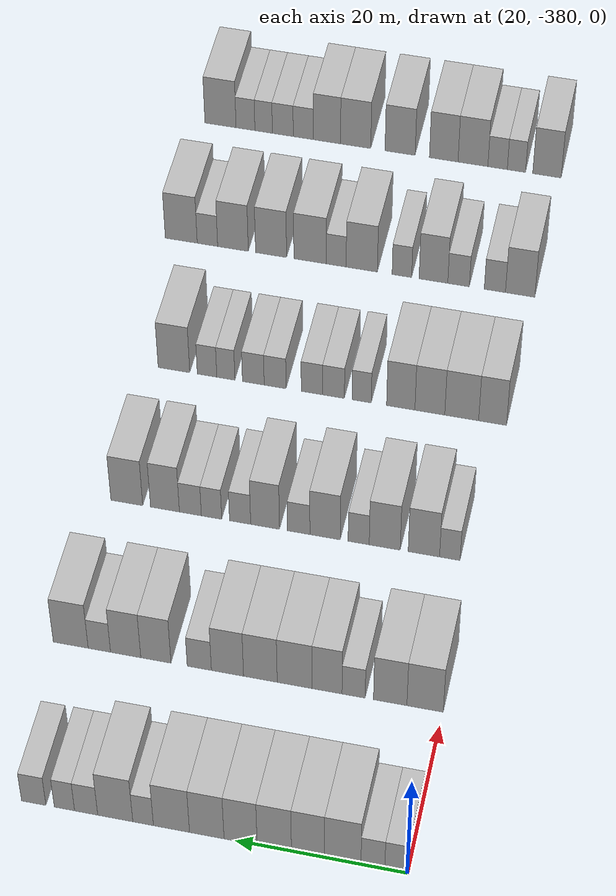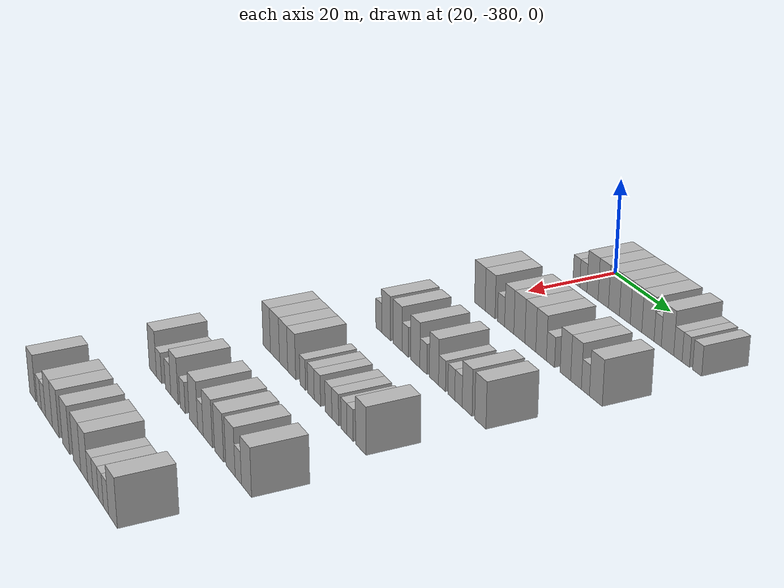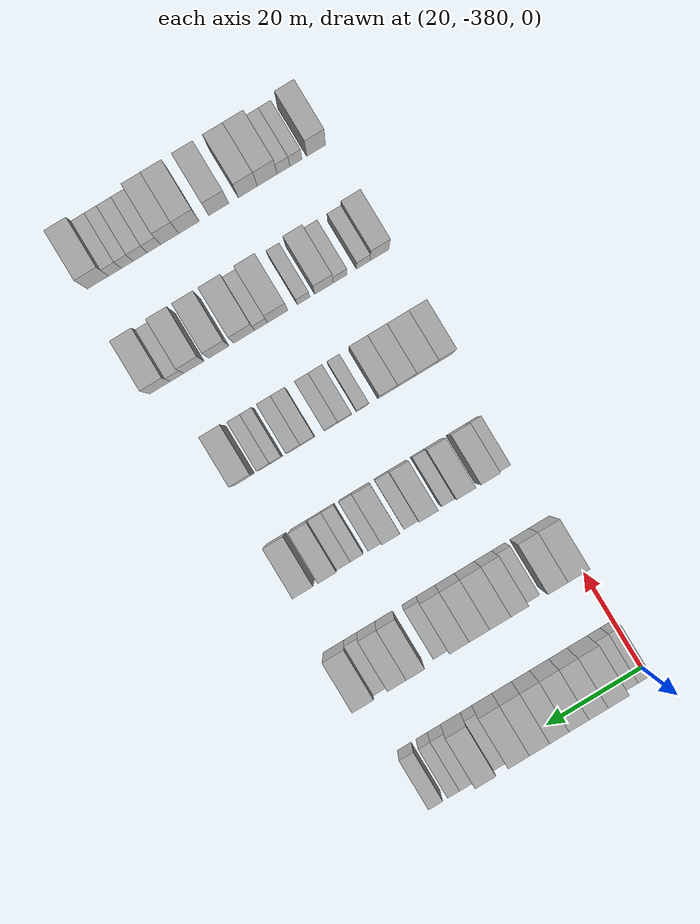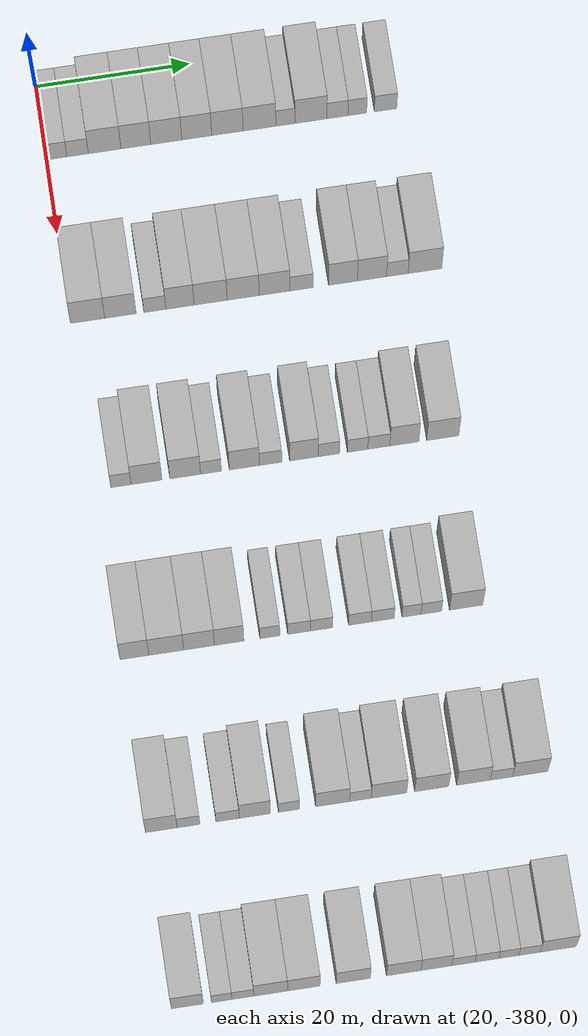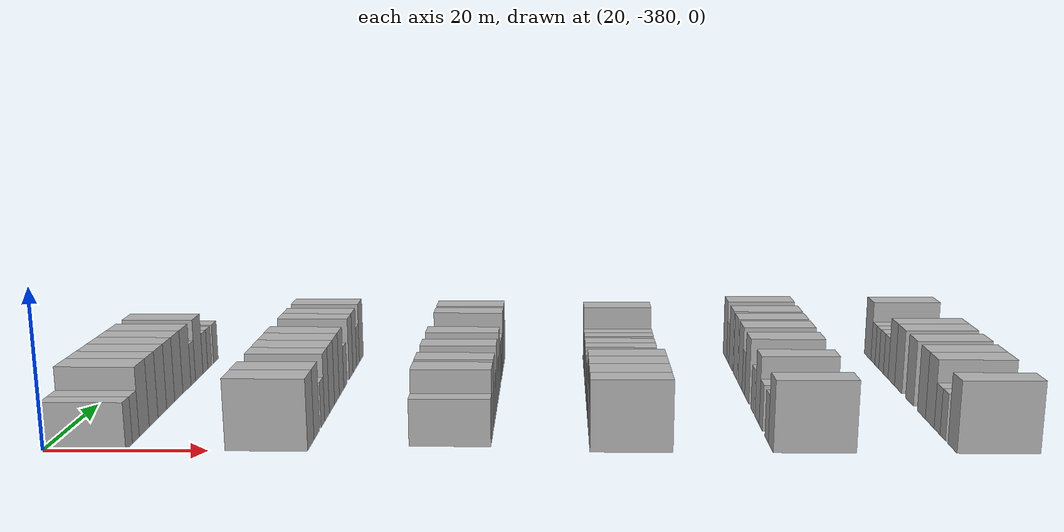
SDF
<sdf version="1.6">
 <world name="default">
  <model name="building_1">
   <static>1</static>
   <pose>25.0000 -378.6766 0 0.000000 0.000000 0.000000</pose>
   <link name="link">
    <pose>0 0 3.00 0 0 0</pose>
    <collision name="collision"><geometry><box><size>10.0000 2.6467 6.0000</size></box></geometry></collision>
    <visual name="visual">
     <cast_shadows>0</cast_shadows>
     <geometry><box><size>10.0000 2.6467 6.0000</size></box></geometry>
     <material>
      <script>
       <uri>model://HANNAS_wall/materials/scripts</uri>
       <uri>model://HANNAS_wall/materials/textures</uri>
       <name>vrc/HANNAS_wall</name>
      </script>
     </material>
    </visual>
   </link>
  </model>
  <model name="building_2">
   <static>1</static>
   <pose>25.0000 -375.9735 0 0.000000 0.000000 0.000000</pose>
   <link name="link">
    <pose>0 0 3.00 0 0 0</pose>
    <collision name="collision"><geometry><box><size>10.0000 2.7595 6.0000</size></box></geometry></collision>
    <visual name="visual">
     <cast_shadows>0</cast_shadows>
     <geometry><box><size>10.0000 2.7595 6.0000</size></box></geometry>
     <material>
      <script>
       <uri>model://HANNAS_wall/materials/scripts</uri>
       <uri>model://HANNAS_wall/materials/textures</uri>
       <name>vrc/HANNAS_wall</name>
      </script>
     </material>
    </visual>
   </link>
  </model>
  <model name="building_3">
   <static>1</static>
   <pose>25.0000 -372.4828 0 0.000000 0.000000 0.000000</pose>
   <link name="link">
    <pose>0 0 4.50 0 0 0</pose>
    <collision name="collision"><geometry><box><size>10.0000 4.2218 9.0000</size></box></geometry></collision>
    <visual name="visual">
     <cast_shadows>0</cast_shadows>
     <geometry><box><size>10.0000 4.2218 9.0000</size></box></geometry>
     <material>
      <script>
       <uri>model://HANNAS_wall/materials/scripts</uri>
       <uri>model://HANNAS_wall/materials/textures</uri>
       <name>vrc/HANNAS_wall</name>
      </script>
     </material>
    </visual>
   </link>
  </model>
  <model name="building_4">
   <static>1</static>
   <pose>25.0000 -368.4443 0 0.000000 0.000000 0.000000</pose>
   <link name="link">
    <pose>0 0 4.50 0 0 0</pose>
    <collision name="collision"><geometry><box><size>10.0000 3.8554 9.0000</size></box></geometry></collision>
    <visual name="visual">
     <cast_shadows>0</cast_shadows>
     <geometry><box><size>10.0000 3.8554 9.0000</size></box></geometry>
     <material>
      <script>
       <uri>model://HANNAS_wall/materials/scripts</uri>
       <uri>model://HANNAS_wall/materials/textures</uri>
       <name>vrc/HANNAS_wall</name>
      </script>
     </material>
    </visual>
   </link>
  </model>
  <model name="building_5">
   <static>1</static>
   <pose>25.0000 -364.5151 0 0.000000 0.000000 0.000000</pose>
   <link name="link">
    <pose>0 0 4.50 0 0 0</pose>
    <collision name="collision"><geometry><box><size>10.0000 4.0030 9.0000</size></box></geometry></collision>
    <visual name="visual">
     <cast_shadows>0</cast_shadows>
     <geometry><box><size>10.0000 4.0030 9.0000</size></box></geometry>
     <material>
      <script>
       <uri>model://HANNAS_wall/materials/scripts</uri>
       <uri>model://HANNAS_wall/materials/textures</uri>
       <name>vrc/HANNAS_wall</name>
      </script>
     </material>
    </visual>
   </link>
  </model>
  <model name="building_6">
   <static>1</static>
   <pose>25.0000 -360.5762 0 0.000000 0.000000 0.000000</pose>
   <link name="link">
    <pose>0 0 4.50 0 0 0</pose>
    <collision name="collision"><geometry><box><size>10.0000 3.8748 9.0000</size></box></geometry></collision>
    <visual name="visual">
     <cast_shadows>0</cast_shadows>
     <geometry><box><size>10.0000 3.8748 9.0000</size></box></geometry>
     <material>
      <script>
       <uri>model://HANNAS_wall/materials/scripts</uri>
       <uri>model://HANNAS_wall/materials/textures</uri>
       <name>vrc/HANNAS_wall</name>
      </script>
     </material>
    </visual>
   </link>
  </model>
  <model name="building_7">
   <static>1</static>
   <pose>25.0000 -356.6111 0 0.000000 0.000000 0.000000</pose>
   <link name="link">
    <pose>0 0 4.50 0 0 0</pose>
    <collision name="collision"><geometry><box><size>10.0000 4.0552 9.0000</size></box></geometry></collision>
    <visual name="visual">
     <cast_shadows>0</cast_shadows>
     <geometry><box><size>10.0000 4.0552 9.0000</size></box></geometry>
     <material>
      <script>
       <uri>model://HANNAS_wall/materials/scripts</uri>
       <uri>model://HANNAS_wall/materials/textures</uri>
       <name>vrc/HANNAS_wall</name>
      </script>
     </material>
    </visual>
   </link>
  </model>
  <model name="building_8">
   <static>1</static>
   <pose>25.0000 -352.4571 0 0.000000 0.000000 0.000000</pose>
   <link name="link">
    <pose>0 0 4.50 0 0 0</pose>
    <collision name="collision"><geometry><box><size>10.0000 4.2529 9.0000</size></box></geometry></collision>
    <visual name="visual">
     <cast_shadows>0</cast_shadows>
     <geometry><box><size>10.0000 4.2529 9.0000</size></box></geometry>
     <material>
      <script>
       <uri>model://HANNAS_wall/materials/scripts</uri>
       <uri>model://HANNAS_wall/materials/textures</uri>
       <name>vrc/HANNAS_wall</name>
      </script>
     </material>
    </visual>
   </link>
  </model>
  <model name="building_9">
   <static>1</static>
   <pose>25.0000 -349.1111 0 0.000000 0.000000 0.000000</pose>
   <link name="link">
    <pose>0 0 3.00 0 0 0</pose>
    <collision name="collision"><geometry><box><size>10.0000 2.4390 6.0000</size></box></geometry></collision>
    <visual name="visual">
     <cast_shadows>0</cast_shadows>
     <geometry><box><size>10.0000 2.4390 6.0000</size></box></geometry>
     <material>
      <script>
       <uri>model://HANNAS_wall/materials/scripts</uri>
       <uri>model://HANNAS_wall/materials/textures</uri>
       <name>vrc/HANNAS_wall</name>
      </script>
     </material>
    </visual>
   </link>
  </model>
  <model name="building_10">
   <static>1</static>
   <pose>25.0000 -345.8129 0 0.000000 0.000000 0.000000</pose>
   <link name="link">
    <pose>0 0 4.50 0 0 0</pose>
    <collision name="collision"><geometry><box><size>10.0000 4.1575 9.0000</size></box></geometry></collision>
    <visual name="visual">
     <cast_shadows>0</cast_shadows>
     <geometry><box><size>10.0000 4.1575 9.0000</size></box></geometry>
     <material>
      <script>
       <uri>model://HANNAS_wall/materials/scripts</uri>
       <uri>model://HANNAS_wall/materials/textures</uri>
       <name>vrc/HANNAS_wall</name>
      </script>
     </material>
    </visual>
   </link>
  </model>
  <model name="building_11">
   <static>1</static>
   <pose>25.0000 -342.3596 0 0.000000 0.000000 0.000000</pose>
   <link name="link">
    <pose>0 0 3.00 0 0 0</pose>
    <collision name="collision"><geometry><box><size>10.0000 2.7490 6.0000</size></box></geometry></collision>
    <visual name="visual">
     <cast_shadows>0</cast_shadows>
     <geometry><box><size>10.0000 2.7490 6.0000</size></box></geometry>
     <material>
      <script>
       <uri>model://HANNAS_wall/materials/scripts</uri>
       <uri>model://HANNAS_wall/materials/textures</uri>
       <name>vrc/HANNAS_wall</name>
      </script>
     </material>
    </visual>
   </link>
  </model>
  <model name="building_12">
   <static>1</static>
   <pose>25.0000 -339.7796 0 0.000000 0.000000 0.000000</pose>
   <link name="link">
    <pose>0 0 3.00 0 0 0</pose>
    <collision name="collision"><geometry><box><size>10.0000 2.4109 6.0000</size></box></geometry></collision>
    <visual name="visual">
     <cast_shadows>0</cast_shadows>
     <geometry><box><size>10.0000 2.4109 6.0000</size></box></geometry>
     <material>
      <script>
       <uri>model://HANNAS_wall/materials/scripts</uri>
       <uri>model://HANNAS_wall/materials/textures</uri>
       <name>vrc/HANNAS_wall</name>
      </script>
     </material>
    </visual>
   </link>
  </model>
  <model name="building_13">
   <static>1</static>
   <pose>25.0000 -336.1206 0 0.000000 0.000000 0.000000</pose>
   <link name="link">
    <pose>0 0 3.00 0 0 0</pose>
    <collision name="collision"><geometry><box><size>10.0000 2.9071 6.0000</size></box></geometry></collision>
    <visual name="visual">
     <cast_shadows>0</cast_shadows>
     <geometry><box><size>10.0000 2.9071 6.0000</size></box></geometry>
     <material>
      <script>
       <uri>model://HANNAS_wall/materials/scripts</uri>
       <uri>model://HANNAS_wall/materials/textures</uri>
       <name>vrc/HANNAS_wall</name>
      </script>
     </material>
    </visual>
   </link>
  </model>
  <model name="building_191">
   <static>1</static>
   <pose>47.0000 -377.8134 0 0.000000 0.000000 0.000000</pose>
   <link name="link">
    <pose>0 0 4.50 0 0 0</pose>
    <collision name="collision"><geometry><box><size>10.0000 4.3732 9.0000</size></box></geometry></collision>
    <visual name="visual">
     <cast_shadows>0</cast_shadows>
     <geometry><box><size>10.0000 4.3732 9.0000</size></box></geometry>
     <material>
      <script>
       <uri>model://HANNAS_wall/materials/scripts</uri>
       <uri>model://HANNAS_wall/materials/textures</uri>
       <name>vrc/HANNAS_wall</name>
      </script>
     </material>
    </visual>
   </link>
  </model>
  <model name="building_192">
   <static>1</static>
   <pose>47.0000 -373.6149 0 0.000000 0.000000 0.000000</pose>
   <link name="link">
    <pose>0 0 4.50 0 0 0</pose>
    <collision name="collision"><geometry><box><size>10.0000 4.0238 9.0000</size></box></geometry></collision>
    <visual name="visual">
     <cast_shadows>0</cast_shadows>
     <geometry><box><size>10.0000 4.0238 9.0000</size></box></geometry>
     <material>
      <script>
       <uri>model://HANNAS_wall/materials/scripts</uri>
       <uri>model://HANNAS_wall/materials/textures</uri>
       <name>vrc/HANNAS_wall</name>
      </script>
     </material>
    </visual>
   </link>
  </model>
  <model name="building_193">
   <static>1</static>
   <pose>47.0000 -369.2017 0 0.000000 0.000000 0.000000</pose>
   <link name="link">
    <pose>0 0 3.00 0 0 0</pose>
    <collision name="collision"><geometry><box><size>10.0000 2.8026 6.0000</size></box></geometry></collision>
    <visual name="visual">
     <cast_shadows>0</cast_shadows>
     <geometry><box><size>10.0000 2.8026 6.0000</size></box></geometry>
     <material>
      <script>
       <uri>model://HANNAS_wall/materials/scripts</uri>
       <uri>model://HANNAS_wall/materials/textures</uri>
       <name>vrc/HANNAS_wall</name>
      </script>
     </material>
    </visual>
   </link>
  </model>
  <model name="building_194">
   <static>1</static>
   <pose>47.0000 -365.9935 0 0.000000 0.000000 0.000000</pose>
   <link name="link">
    <pose>0 0 4.50 0 0 0</pose>
    <collision name="collision"><geometry><box><size>10.0000 3.6138 9.0000</size></box></geometry></collision>
    <visual name="visual">
     <cast_shadows>0</cast_shadows>
     <geometry><box><size>10.0000 3.6138 9.0000</size></box></geometry>
     <material>
      <script>
       <uri>model://HANNAS_wall/materials/scripts</uri>
       <uri>model://HANNAS_wall/materials/textures</uri>
       <name>vrc/HANNAS_wall</name>
      </script>
     </material>
    </visual>
   </link>
  </model>
  <model name="building_195">
   <static>1</static>
   <pose>47.0000 -362.0600 0 0.000000 0.000000 0.000000</pose>
   <link name="link">
    <pose>0 0 4.50 0 0 0</pose>
    <collision name="collision"><geometry><box><size>10.0000 4.2532 9.0000</size></box></geometry></collision>
    <visual name="visual">
     <cast_shadows>0</cast_shadows>
     <geometry><box><size>10.0000 4.2532 9.0000</size></box></geometry>
     <material>
      <script>
       <uri>model://HANNAS_wall/materials/scripts</uri>
       <uri>model://HANNAS_wall/materials/textures</uri>
       <name>vrc/HANNAS_wall</name>
      </script>
     </material>
    </visual>
   </link>
  </model>
  <model name="building_196">
   <static>1</static>
   <pose>47.0000 -357.8823 0 0.000000 0.000000 0.000000</pose>
   <link name="link">
    <pose>0 0 4.50 0 0 0</pose>
    <collision name="collision"><geometry><box><size>10.0000 4.1022 9.0000</size></box></geometry></collision>
    <visual name="visual">
     <cast_shadows>0</cast_shadows>
     <geometry><box><size>10.0000 4.1022 9.0000</size></box></geometry>
     <material>
      <script>
       <uri>model://HANNAS_wall/materials/scripts</uri>
       <uri>model://HANNAS_wall/materials/textures</uri>
       <name>vrc/HANNAS_wall</name>
      </script>
     </material>
    </visual>
   </link>
  </model>
  <model name="building_197">
   <static>1</static>
   <pose>47.0000 -353.8651 0 0.000000 0.000000 0.000000</pose>
   <link name="link">
    <pose>0 0 4.50 0 0 0</pose>
    <collision name="collision"><geometry><box><size>10.0000 3.9322 9.0000</size></box></geometry></collision>
    <visual name="visual">
     <cast_shadows>0</cast_shadows>
     <geometry><box><size>10.0000 3.9322 9.0000</size></box></geometry>
     <material>
      <script>
       <uri>model://HANNAS_wall/materials/scripts</uri>
       <uri>model://HANNAS_wall/materials/textures</uri>
       <name>vrc/HANNAS_wall</name>
      </script>
     </material>
    </visual>
   </link>
  </model>
  <model name="building_198">
   <static>1</static>
   <pose>47.0000 -350.4172 0 0.000000 0.000000 0.000000</pose>
   <link name="link">
    <pose>0 0 3.00 0 0 0</pose>
    <collision name="collision"><geometry><box><size>10.0000 2.9635 6.0000</size></box></geometry></collision>
    <visual name="visual">
     <cast_shadows>0</cast_shadows>
     <geometry><box><size>10.0000 2.9635 6.0000</size></box></geometry>
     <material>
      <script>
       <uri>model://HANNAS_wall/materials/scripts</uri>
       <uri>model://HANNAS_wall/materials/textures</uri>
       <name>vrc/HANNAS_wall</name>
      </script>
     </material>
    </visual>
   </link>
  </model>
  <model name="building_199">
   <static>1</static>
   <pose>47.0000 -345.0776 0 0.000000 0.000000 0.000000</pose>
   <link name="link">
    <pose>0 0 4.50 0 0 0</pose>
    <collision name="collision"><geometry><box><size>10.0000 3.7157 9.0000</size></box></geometry></collision>
    <visual name="visual">
     <cast_shadows>0</cast_shadows>
     <geometry><box><size>10.0000 3.7157 9.0000</size></box></geometry>
     <material>
      <script>
       <uri>model://HANNAS_wall/materials/scripts</uri>
       <uri>model://HANNAS_wall/materials/textures</uri>
       <name>vrc/HANNAS_wall</name>
      </script>
     </material>
    </visual>
   </link>
  </model>
  <model name="building_200">
   <static>1</static>
   <pose>47.0000 -341.3517 0 0.000000 0.000000 0.000000</pose>
   <link name="link">
    <pose>0 0 4.50 0 0 0</pose>
    <collision name="collision"><geometry><box><size>10.0000 3.7361 9.0000</size></box></geometry></collision>
    <visual name="visual">
     <cast_shadows>0</cast_shadows>
     <geometry><box><size>10.0000 3.7361 9.0000</size></box></geometry>
     <material>
      <script>
       <uri>model://HANNAS_wall/materials/scripts</uri>
       <uri>model://HANNAS_wall/materials/textures</uri>
       <name>vrc/HANNAS_wall</name>
      </script>
     </material>
    </visual>
   </link>
  </model>
  <model name="building_201">
   <static>1</static>
   <pose>47.0000 -338.0992 0 0.000000 0.000000 0.000000</pose>
   <link name="link">
    <pose>0 0 3.00 0 0 0</pose>
    <collision name="collision"><geometry><box><size>10.0000 2.7690 6.0000</size></box></geometry></collision>
    <visual name="visual">
     <cast_shadows>0</cast_shadows>
     <geometry><box><size>10.0000 2.7690 6.0000</size></box></geometry>
     <material>
      <script>
       <uri>model://HANNAS_wall/materials/scripts</uri>
       <uri>model://HANNAS_wall/materials/textures</uri>
       <name>vrc/HANNAS_wall</name>
      </script>
     </material>
    </visual>
   </link>
  </model>
  <model name="building_202">
   <static>1</static>
   <pose>47.0000 -334.5515 0 0.000000 0.000000 0.000000</pose>
   <link name="link">
    <pose>0 0 4.50 0 0 0</pose>
    <collision name="collision"><geometry><box><size>10.0000 4.3264 9.0000</size></box></geometry></collision>
    <visual name="visual">
     <cast_shadows>0</cast_shadows>
     <geometry><box><size>10.0000 4.3264 9.0000</size></box></geometry>
     <material>
      <script>
       <uri>model://HANNAS_wall/materials/scripts</uri>
       <uri>model://HANNAS_wall/materials/textures</uri>
       <name>vrc/HANNAS_wall</name>
      </script>
     </material>
    </visual>
   </link>
  </model>
  <model name="building_383">
   <static>1</static>
   <pose>69.0000 -376.7182 0 0.000000 0.000000 0.000000</pose>
   <link name="link">
    <pose>0 0 3.00 0 0 0</pose>
    <collision name="collision"><geometry><box><size>10.0000 2.5636 6.0000</size></box></geometry></collision>
    <visual name="visual">
     <cast_shadows>0</cast_shadows>
     <geometry><box><size>10.0000 2.5636 6.0000</size></box></geometry>
     <material>
      <script>
       <uri>model://HANNAS_wall/materials/scripts</uri>
       <uri>model://HANNAS_wall/materials/textures</uri>
       <name>vrc/HANNAS_wall</name>
      </script>
     </material>
    </visual>
   </link>
  </model>
  <model name="building_384">
   <static>1</static>
   <pose>69.0000 -373.4763 0 0.000000 0.000000 0.000000</pose>
   <link name="link">
    <pose>0 0 4.50 0 0 0</pose>
    <collision name="collision"><geometry><box><size>10.0000 3.9203 9.0000</size></box></geometry></collision>
    <visual name="visual">
     <cast_shadows>0</cast_shadows>
     <geometry><box><size>10.0000 3.9203 9.0000</size></box></geometry>
     <material>
      <script>
       <uri>model://HANNAS_wall/materials/scripts</uri>
       <uri>model://HANNAS_wall/materials/textures</uri>
       <name>vrc/HANNAS_wall</name>
      </script>
     </material>
    </visual>
   </link>
  </model>
  <model name="building_385">
   <static>1</static>
   <pose>69.0000 -368.5686 0 0.000000 0.000000 0.000000</pose>
   <link name="link">
    <pose>0 0 4.50 0 0 0</pose>
    <collision name="collision"><geometry><box><size>10.0000 3.8950 9.0000</size></box></geometry></collision>
    <visual name="visual">
     <cast_shadows>0</cast_shadows>
     <geometry><box><size>10.0000 3.8950 9.0000</size></box></geometry>
     <material>
      <script>
       <uri>model://HANNAS_wall/materials/scripts</uri>
       <uri>model://HANNAS_wall/materials/textures</uri>
       <name>vrc/HANNAS_wall</name>
      </script>
     </material>
    </visual>
   </link>
  </model>
  <model name="building_386">
   <static>1</static>
   <pose>69.0000 -365.2976 0 0.000000 0.000000 0.000000</pose>
   <link name="link">
    <pose>0 0 3.00 0 0 0</pose>
    <collision name="collision"><geometry><box><size>10.0000 2.6471 6.0000</size></box></geometry></collision>
    <visual name="visual">
     <cast_shadows>0</cast_shadows>
     <geometry><box><size>10.0000 2.6471 6.0000</size></box></geometry>
     <material>
      <script>
       <uri>model://HANNAS_wall/materials/scripts</uri>
       <uri>model://HANNAS_wall/materials/textures</uri>
       <name>vrc/HANNAS_wall</name>
      </script>
     </material>
    </visual>
   </link>
  </model>
  <model name="building_387">
   <static>1</static>
   <pose>69.0000 -361.0617 0 0.000000 0.000000 0.000000</pose>
   <link name="link">
    <pose>0 0 4.50 0 0 0</pose>
    <collision name="collision"><geometry><box><size>10.0000 3.8247 9.0000</size></box></geometry></collision>
    <visual name="visual">
     <cast_shadows>0</cast_shadows>
     <geometry><box><size>10.0000 3.8247 9.0000</size></box></geometry>
     <material>
      <script>
       <uri>model://HANNAS_wall/materials/scripts</uri>
       <uri>model://HANNAS_wall/materials/textures</uri>
       <name>vrc/HANNAS_wall</name>
      </script>
     </material>
    </visual>
   </link>
  </model>
  <model name="building_388">
   <static>1</static>
   <pose>69.0000 -357.7267 0 0.000000 0.000000 0.000000</pose>
   <link name="link">
    <pose>0 0 3.00 0 0 0</pose>
    <collision name="collision"><geometry><box><size>10.0000 2.8453 6.0000</size></box></geometry></collision>
    <visual name="visual">
     <cast_shadows>0</cast_shadows>
     <geometry><box><size>10.0000 2.8453 6.0000</size></box></geometry>
     <material>
      <script>
       <uri>model://HANNAS_wall/materials/scripts</uri>
       <uri>model://HANNAS_wall/materials/textures</uri>
       <name>vrc/HANNAS_wall</name>
      </script>
     </material>
    </visual>
   </link>
  </model>
  <model name="building_389">
   <static>1</static>
   <pose>69.0000 -353.4746 0 0.000000 0.000000 0.000000</pose>
   <link name="link">
    <pose>0 0 4.50 0 0 0</pose>
    <collision name="collision"><geometry><box><size>10.0000 3.6590 9.0000</size></box></geometry></collision>
    <visual name="visual">
     <cast_shadows>0</cast_shadows>
     <geometry><box><size>10.0000 3.6590 9.0000</size></box></geometry>
     <material>
      <script>
       <uri>model://HANNAS_wall/materials/scripts</uri>
       <uri>model://HANNAS_wall/materials/textures</uri>
       <name>vrc/HANNAS_wall</name>
      </script>
     </material>
    </visual>
   </link>
  </model>
  <model name="building_390">
   <static>1</static>
   <pose>69.0000 -350.3002 0 0.000000 0.000000 0.000000</pose>
   <link name="link">
    <pose>0 0 3.00 0 0 0</pose>
    <collision name="collision"><geometry><box><size>10.0000 2.6898 6.0000</size></box></geometry></collision>
    <visual name="visual">
     <cast_shadows>0</cast_shadows>
     <geometry><box><size>10.0000 2.6898 6.0000</size></box></geometry>
     <material>
      <script>
       <uri>model://HANNAS_wall/materials/scripts</uri>
       <uri>model://HANNAS_wall/materials/textures</uri>
       <name>vrc/HANNAS_wall</name>
      </script>
     </material>
    </visual>
   </link>
  </model>
  <model name="building_391">
   <static>1</static>
   <pose>69.0000 -346.6586 0 0.000000 0.000000 0.000000</pose>
   <link name="link">
    <pose>0 0 3.00 0 0 0</pose>
    <collision name="collision"><geometry><box><size>10.0000 2.5935 6.0000</size></box></geometry></collision>
    <visual name="visual">
     <cast_shadows>0</cast_shadows>
     <geometry><box><size>10.0000 2.5935 6.0000</size></box></geometry>
     <material>
      <script>
       <uri>model://HANNAS_wall/materials/scripts</uri>
       <uri>model://HANNAS_wall/materials/textures</uri>
       <name>vrc/HANNAS_wall</name>
      </script>
     </material>
    </visual>
   </link>
  </model>
  <model name="building_392">
   <static>1</static>
   <pose>69.0000 -343.9580 0 0.000000 0.000000 0.000000</pose>
   <link name="link">
    <pose>0 0 3.00 0 0 0</pose>
    <collision name="collision"><geometry><box><size>10.0000 2.8078 6.0000</size></box></geometry></collision>
    <visual name="visual">
     <cast_shadows>0</cast_shadows>
     <geometry><box><size>10.0000 2.8078 6.0000</size></box></geometry>
     <material>
      <script>
       <uri>model://HANNAS_wall/materials/scripts</uri>
       <uri>model://HANNAS_wall/materials/textures</uri>
       <name>vrc/HANNAS_wall</name>
      </script>
     </material>
    </visual>
   </link>
  </model>
  <model name="building_393">
   <static>1</static>
   <pose>69.0000 -340.7050 0 0.000000 0.000000 0.000000</pose>
   <link name="link">
    <pose>0 0 4.50 0 0 0</pose>
    <collision name="collision"><geometry><box><size>10.0000 3.6982 9.0000</size></box></geometry></collision>
    <visual name="visual">
     <cast_shadows>0</cast_shadows>
     <geometry><box><size>10.0000 3.6982 9.0000</size></box></geometry>
     <material>
      <script>
       <uri>model://HANNAS_wall/materials/scripts</uri>
       <uri>model://HANNAS_wall/materials/textures</uri>
       <name>vrc/HANNAS_wall</name>
      </script>
     </material>
    </visual>
   </link>
  </model>
  <model name="building_394">
   <static>1</static>
   <pose>69.0000 -335.8134 0 0.000000 0.000000 0.000000</pose>
   <link name="link">
    <pose>0 0 4.50 0 0 0</pose>
    <collision name="collision"><geometry><box><size>10.0000 4.0850 9.0000</size></box></geometry></collision>
    <visual name="visual">
     <cast_shadows>0</cast_shadows>
     <geometry><box><size>10.0000 4.0850 9.0000</size></box></geometry>
     <material>
      <script>
       <uri>model://HANNAS_wall/materials/scripts</uri>
       <uri>model://HANNAS_wall/materials/textures</uri>
       <name>vrc/HANNAS_wall</name>
      </script>
     </material>
    </visual>
   </link>
  </model>
  <model name="building_564">
   <static>1</static>
   <pose>91.0000 -378.1955 0 0.000000 0.000000 0.000000</pose>
   <link name="link">
    <pose>0 0 4.50 0 0 0</pose>
    <collision name="collision"><geometry><box><size>10.0000 3.6091 9.0000</size></box></geometry></collision>
    <visual name="visual">
     <cast_shadows>0</cast_shadows>
     <geometry><box><size>10.0000 3.6091 9.0000</size></box></geometry>
     <material>
      <script>
       <uri>model://HANNAS_wall/materials/scripts</uri>
       <uri>model://HANNAS_wall/materials/textures</uri>
       <name>vrc/HANNAS_wall</name>
      </script>
     </material>
    </visual>
   </link>
  </model>
  <model name="building_565">
   <static>1</static>
   <pose>91.0000 -374.1950 0 0.000000 0.000000 0.000000</pose>
   <link name="link">
    <pose>0 0 4.50 0 0 0</pose>
    <collision name="collision"><geometry><box><size>10.0000 4.3919 9.0000</size></box></geometry></collision>
    <visual name="visual">
     <cast_shadows>0</cast_shadows>
     <geometry><box><size>10.0000 4.3919 9.0000</size></box></geometry>
     <material>
      <script>
       <uri>model://HANNAS_wall/materials/scripts</uri>
       <uri>model://HANNAS_wall/materials/textures</uri>
       <name>vrc/HANNAS_wall</name>
      </script>
     </material>
    </visual>
   </link>
  </model>
  <model name="building_566">
   <static>1</static>
   <pose>91.0000 -370.0602 0 0.000000 0.000000 0.000000</pose>
   <link name="link">
    <pose>0 0 4.50 0 0 0</pose>
    <collision name="collision"><geometry><box><size>10.0000 3.8777 9.0000</size></box></geometry></collision>
    <visual name="visual">
     <cast_shadows>0</cast_shadows>
     <geometry><box><size>10.0000 3.8777 9.0000</size></box></geometry>
     <material>
      <script>
       <uri>model://HANNAS_wall/materials/scripts</uri>
       <uri>model://HANNAS_wall/materials/textures</uri>
       <name>vrc/HANNAS_wall</name>
      </script>
     </material>
    </visual>
   </link>
  </model>
  <model name="building_567">
   <static>1</static>
   <pose>91.0000 -366.2762 0 0.000000 0.000000 0.000000</pose>
   <link name="link">
    <pose>0 0 4.50 0 0 0</pose>
    <collision name="collision"><geometry><box><size>10.0000 3.6901 9.0000</size></box></geometry></collision>
    <visual name="visual">
     <cast_shadows>0</cast_shadows>
     <geometry><box><size>10.0000 3.6901 9.0000</size></box></geometry>
     <material>
      <script>
       <uri>model://HANNAS_wall/materials/scripts</uri>
       <uri>model://HANNAS_wall/materials/textures</uri>
       <name>vrc/HANNAS_wall</name>
      </script>
     </material>
    </visual>
   </link>
  </model>
  <model name="building_568">
   <static>1</static>
   <pose>91.0000 -361.1736 0 0.000000 0.000000 0.000000</pose>
   <link name="link">
    <pose>0 0 3.00 0 0 0</pose>
    <collision name="collision"><geometry><box><size>10.0000 2.5152 6.0000</size></box></geometry></collision>
    <visual name="visual">
     <cast_shadows>0</cast_shadows>
     <geometry><box><size>10.0000 2.5152 6.0000</size></box></geometry>
     <material>
      <script>
       <uri>model://HANNAS_wall/materials/scripts</uri>
       <uri>model://HANNAS_wall/materials/textures</uri>
       <name>vrc/HANNAS_wall</name>
      </script>
     </material>
    </visual>
   </link>
  </model>
  <model name="building_569">
   <static>1</static>
   <pose>91.0000 -357.4845 0 0.000000 0.000000 0.000000</pose>
   <link name="link">
    <pose>0 0 3.00 0 0 0</pose>
    <collision name="collision"><geometry><box><size>10.0000 2.8630 6.0000</size></box></geometry></collision>
    <visual name="visual">
     <cast_shadows>0</cast_shadows>
     <geometry><box><size>10.0000 2.8630 6.0000</size></box></geometry>
     <material>
      <script>
       <uri>model://HANNAS_wall/materials/scripts</uri>
       <uri>model://HANNAS_wall/materials/textures</uri>
       <name>vrc/HANNAS_wall</name>
      </script>
     </material>
    </visual>
   </link>
  </model>
  <model name="building_570">
   <static>1</static>
   <pose>91.0000 -354.6542 0 0.000000 0.000000 0.000000</pose>
   <link name="link">
    <pose>0 0 3.00 0 0 0</pose>
    <collision name="collision"><geometry><box><size>10.0000 2.7976 6.0000</size></box></geometry></collision>
    <visual name="visual">
     <cast_shadows>0</cast_shadows>
     <geometry><box><size>10.0000 2.7976 6.0000</size></box></geometry>
     <material>
      <script>
       <uri>model://HANNAS_wall/materials/scripts</uri>
       <uri>model://HANNAS_wall/materials/textures</uri>
       <name>vrc/HANNAS_wall</name>
      </script>
     </material>
    </visual>
   </link>
  </model>
  <model name="building_571">
   <static>1</static>
   <pose>91.0000 -349.8128 0 0.000000 0.000000 0.000000</pose>
   <link name="link">
    <pose>0 0 3.00 0 0 0</pose>
    <collision name="collision"><geometry><box><size>10.0000 2.8852 6.0000</size></box></geometry></collision>
    <visual name="visual">
     <cast_shadows>0</cast_shadows>
     <geometry><box><size>10.0000 2.8852 6.0000</size></box></geometry>
     <material>
      <script>
       <uri>model://HANNAS_wall/materials/scripts</uri>
       <uri>model://HANNAS_wall/materials/textures</uri>
       <name>vrc/HANNAS_wall</name>
      </script>
     </material>
    </visual>
   </link>
  </model>
  <model name="building_572">
   <static>1</static>
   <pose>91.0000 -346.9358 0 0.000000 0.000000 0.000000</pose>
   <link name="link">
    <pose>0 0 3.00 0 0 0</pose>
    <collision name="collision"><geometry><box><size>10.0000 2.8688 6.0000</size></box></geometry></collision>
    <visual name="visual">
     <cast_shadows>0</cast_shadows>
     <geometry><box><size>10.0000 2.8688 6.0000</size></box></geometry>
     <material>
      <script>
       <uri>model://HANNAS_wall/materials/scripts</uri>
       <uri>model://HANNAS_wall/materials/textures</uri>
       <name>vrc/HANNAS_wall</name>
      </script>
     </material>
    </visual>
   </link>
  </model>
  <model name="building_573">
   <static>1</static>
   <pose>91.0000 -343.3011 0 0.000000 0.000000 0.000000</pose>
   <link name="link">
    <pose>0 0 3.00 0 0 0</pose>
    <collision name="collision"><geometry><box><size>10.0000 2.4007 6.0000</size></box></geometry></collision>
    <visual name="visual">
     <cast_shadows>0</cast_shadows>
     <geometry><box><size>10.0000 2.4007 6.0000</size></box></geometry>
     <material>
      <script>
       <uri>model://HANNAS_wall/materials/scripts</uri>
       <uri>model://HANNAS_wall/materials/textures</uri>
       <name>vrc/HANNAS_wall</name>
      </script>
     </material>
    </visual>
   </link>
  </model>
  <model name="building_574">
   <static>1</static>
   <pose>91.0000 -340.8085 0 0.000000 0.000000 0.000000</pose>
   <link name="link">
    <pose>0 0 3.00 0 0 0</pose>
    <collision name="collision"><geometry><box><size>10.0000 2.5844 6.0000</size></box></geometry></collision>
    <visual name="visual">
     <cast_shadows>0</cast_shadows>
     <geometry><box><size>10.0000 2.5844 6.0000</size></box></geometry>
     <material>
      <script>
       <uri>model://HANNAS_wall/materials/scripts</uri>
       <uri>model://HANNAS_wall/materials/textures</uri>
       <name>vrc/HANNAS_wall</name>
      </script>
     </material>
    </visual>
   </link>
  </model>
  <model name="building_575">
   <static>1</static>
   <pose>91.0000 -336.4158 0 0.000000 0.000000 0.000000</pose>
   <link name="link">
    <pose>0 0 4.50 0 0 0</pose>
    <collision name="collision"><geometry><box><size>10.0000 4.2011 9.0000</size></box></geometry></collision>
    <visual name="visual">
     <cast_shadows>0</cast_shadows>
     <geometry><box><size>10.0000 4.2011 9.0000</size></box></geometry>
     <material>
      <script>
       <uri>model://HANNAS_wall/materials/scripts</uri>
       <uri>model://HANNAS_wall/materials/textures</uri>
       <name>vrc/HANNAS_wall</name>
      </script>
     </material>
    </visual>
   </link>
  </model>
  <model name="building_756">
   <static>1</static>
   <pose>113.0000 -378.0325 0 0.000000 0.000000 0.000000</pose>
   <link name="link">
    <pose>0 0 4.50 0 0 0</pose>
    <collision name="collision"><geometry><box><size>10.0000 3.9350 9.0000</size></box></geometry></collision>
    <visual name="visual">
     <cast_shadows>0</cast_shadows>
     <geometry><box><size>10.0000 3.9350 9.0000</size></box></geometry>
     <material>
      <script>
       <uri>model://HANNAS_wall/materials/scripts</uri>
       <uri>model://HANNAS_wall/materials/textures</uri>
       <name>vrc/HANNAS_wall</name>
      </script>
     </material>
    </visual>
   </link>
  </model>
  <model name="building_757">
   <static>1</static>
   <pose>113.0000 -374.6476 0 0.000000 0.000000 0.000000</pose>
   <link name="link">
    <pose>0 0 3.00 0 0 0</pose>
    <collision name="collision"><geometry><box><size>10.0000 2.8347 6.0000</size></box></geometry></collision>
    <visual name="visual">
     <cast_shadows>0</cast_shadows>
     <geometry><box><size>10.0000 2.8347 6.0000</size></box></geometry>
     <material>
      <script>
       <uri>model://HANNAS_wall/materials/scripts</uri>
       <uri>model://HANNAS_wall/materials/textures</uri>
       <name>vrc/HANNAS_wall</name>
      </script>
     </material>
    </visual>
   </link>
  </model>
  <model name="building_758">
   <static>1</static>
   <pose>113.0000 -369.7759 0 0.000000 0.000000 0.000000</pose>
   <link name="link">
    <pose>0 0 3.00 0 0 0</pose>
    <collision name="collision"><geometry><box><size>10.0000 2.9087 6.0000</size></box></geometry></collision>
    <visual name="visual">
     <cast_shadows>0</cast_shadows>
     <geometry><box><size>10.0000 2.9087 6.0000</size></box></geometry>
     <material>
      <script>
       <uri>model://HANNAS_wall/materials/scripts</uri>
       <uri>model://HANNAS_wall/materials/textures</uri>
       <name>vrc/HANNAS_wall</name>
      </script>
     </material>
    </visual>
   </link>
  </model>
  <model name="building_759">
   <static>1</static>
   <pose>113.0000 -366.3853 0 0.000000 0.000000 0.000000</pose>
   <link name="link">
    <pose>0 0 4.50 0 0 0</pose>
    <collision name="collision"><geometry><box><size>10.0000 3.8724 9.0000</size></box></geometry></collision>
    <visual name="visual">
     <cast_shadows>0</cast_shadows>
     <geometry><box><size>10.0000 3.8724 9.0000</size></box></geometry>
     <material>
      <script>
       <uri>model://HANNAS_wall/materials/scripts</uri>
       <uri>model://HANNAS_wall/materials/textures</uri>
       <name>vrc/HANNAS_wall</name>
      </script>
     </material>
    </visual>
   </link>
  </model>
  <model name="building_760">
   <static>1</static>
   <pose>113.0000 -362.1274 0 0.000000 0.000000 0.000000</pose>
   <link name="link">
    <pose>0 0 3.00 0 0 0</pose>
    <collision name="collision"><geometry><box><size>10.0000 2.6433 6.0000</size></box></geometry></collision>
    <visual name="visual">
     <cast_shadows>0</cast_shadows>
     <geometry><box><size>10.0000 2.6433 6.0000</size></box></geometry>
     <material>
      <script>
       <uri>model://HANNAS_wall/materials/scripts</uri>
       <uri>model://HANNAS_wall/materials/textures</uri>
       <name>vrc/HANNAS_wall</name>
      </script>
     </material>
    </visual>
   </link>
  </model>
  <model name="building_761">
   <static>1</static>
   <pose>113.0000 -356.6867 0 0.000000 0.000000 0.000000</pose>
   <link name="link">
    <pose>0 0 4.50 0 0 0</pose>
    <collision name="collision"><geometry><box><size>10.0000 4.2382 9.0000</size></box></geometry></collision>
    <visual name="visual">
     <cast_shadows>0</cast_shadows>
     <geometry><box><size>10.0000 4.2382 9.0000</size></box></geometry>
     <material>
      <script>
       <uri>model://HANNAS_wall/materials/scripts</uri>
       <uri>model://HANNAS_wall/materials/textures</uri>
       <name>vrc/HANNAS_wall</name>
      </script>
     </material>
    </visual>
   </link>
  </model>
  <model name="building_762">
   <static>1</static>
   <pose>113.0000 -353.2263 0 0.000000 0.000000 0.000000</pose>
   <link name="link">
    <pose>0 0 3.00 0 0 0</pose>
    <collision name="collision"><geometry><box><size>10.0000 2.6825 6.0000</size></box></geometry></collision>
    <visual name="visual">
     <cast_shadows>0</cast_shadows>
     <geometry><box><size>10.0000 2.6825 6.0000</size></box></geometry>
     <material>
      <script>
       <uri>model://HANNAS_wall/materials/scripts</uri>
       <uri>model://HANNAS_wall/materials/textures</uri>
       <name>vrc/HANNAS_wall</name>
      </script>
     </material>
    </visual>
   </link>
  </model>
  <model name="building_763">
   <static>1</static>
   <pose>113.0000 -349.6649 0 0.000000 0.000000 0.000000</pose>
   <link name="link">
    <pose>0 0 4.50 0 0 0</pose>
    <collision name="collision"><geometry><box><size>10.0000 4.4402 9.0000</size></box></geometry></collision>
    <visual name="visual">
     <cast_shadows>0</cast_shadows>
     <geometry><box><size>10.0000 4.4402 9.0000</size></box></geometry>
     <material>
      <script>
       <uri>model://HANNAS_wall/materials/scripts</uri>
       <uri>model://HANNAS_wall/materials/textures</uri>
       <name>vrc/HANNAS_wall</name>
      </script>
     </material>
    </visual>
   </link>
  </model>
  <model name="building_764">
   <static>1</static>
   <pose>113.0000 -344.3226 0 0.000000 0.000000 0.000000</pose>
   <link name="link">
    <pose>0 0 4.50 0 0 0</pose>
    <collision name="collision"><geometry><box><size>10.0000 4.2444 9.0000</size></box></geometry></collision>
    <visual name="visual">
     <cast_shadows>0</cast_shadows>
     <geometry><box><size>10.0000 4.2444 9.0000</size></box></geometry>
     <material>
      <script>
       <uri>model://HANNAS_wall/materials/scripts</uri>
       <uri>model://HANNAS_wall/materials/textures</uri>
       <name>vrc/HANNAS_wall</name>
      </script>
     </material>
    </visual>
   </link>
  </model>
  <model name="building_765">
   <static>1</static>
   <pose>113.0000 -339.0950 0 0.000000 0.000000 0.000000</pose>
   <link name="link">
    <pose>0 0 4.50 0 0 0</pose>
    <collision name="collision"><geometry><box><size>10.0000 4.2107 9.0000</size></box></geometry></collision>
    <visual name="visual">
     <cast_shadows>0</cast_shadows>
     <geometry><box><size>10.0000 4.2107 9.0000</size></box></geometry>
     <material>
      <script>
       <uri>model://HANNAS_wall/materials/scripts</uri>
       <uri>model://HANNAS_wall/materials/textures</uri>
       <name>vrc/HANNAS_wall</name>
      </script>
     </material>
    </visual>
   </link>
  </model>
  <model name="building_766">
   <static>1</static>
   <pose>113.0000 -335.5823 0 0.000000 0.000000 0.000000</pose>
   <link name="link">
    <pose>0 0 3.00 0 0 0</pose>
    <collision name="collision"><geometry><box><size>10.0000 2.8148 6.0000</size></box></geometry></collision>
    <visual name="visual">
     <cast_shadows>0</cast_shadows>
     <geometry><box><size>10.0000 2.8148 6.0000</size></box></geometry>
     <material>
      <script>
       <uri>model://HANNAS_wall/materials/scripts</uri>
       <uri>model://HANNAS_wall/materials/textures</uri>
       <name>vrc/HANNAS_wall</name>
      </script>
     </material>
    </visual>
   </link>
  </model>
  <model name="building_767">
   <static>1</static>
   <pose>113.0000 -331.9756 0 0.000000 0.000000 0.000000</pose>
   <link name="link">
    <pose>0 0 4.50 0 0 0</pose>
    <collision name="collision"><geometry><box><size>10.0000 4.3985 9.0000</size></box></geometry></collision>
    <visual name="visual">
     <cast_shadows>0</cast_shadows>
     <geometry><box><size>10.0000 4.3985 9.0000</size></box></geometry>
     <material>
      <script>
       <uri>model://HANNAS_wall/materials/scripts</uri>
       <uri>model://HANNAS_wall/materials/textures</uri>
       <name>vrc/HANNAS_wall</name>
      </script>
     </material>
    </visual>
   </link>
  </model>
  <model name="building_939">
   <static>1</static>
   <pose>135.0000 -378.0331 0 0.000000 0.000000 0.000000</pose>
   <link name="link">
    <pose>0 0 4.50 0 0 0</pose>
    <collision name="collision"><geometry><box><size>10.0000 3.9338 9.0000</size></box></geometry></collision>
    <visual name="visual">
     <cast_shadows>0</cast_shadows>
     <geometry><box><size>10.0000 3.9338 9.0000</size></box></geometry>
     <material>
      <script>
       <uri>model://HANNAS_wall/materials/scripts</uri>
       <uri>model://HANNAS_wall/materials/textures</uri>
       <name>vrc/HANNAS_wall</name>
      </script>
     </material>
    </visual>
   </link>
  </model>
  <model name="building_940">
   <static>1</static>
   <pose>135.0000 -373.8032 0 0.000000 0.000000 0.000000</pose>
   <link name="link">
    <pose>0 0 3.00 0 0 0</pose>
    <collision name="collision"><geometry><box><size>10.0000 2.5260 6.0000</size></box></geometry></collision>
    <visual name="visual">
     <cast_shadows>0</cast_shadows>
     <geometry><box><size>10.0000 2.5260 6.0000</size></box></geometry>
     <material>
      <script>
       <uri>model://HANNAS_wall/materials/scripts</uri>
       <uri>model://HANNAS_wall/materials/textures</uri>
       <name>vrc/HANNAS_wall</name>
      </script>
     </material>
    </visual>
   </link>
  </model>
  <model name="building_941">
   <static>1</static>
   <pose>135.0000 -371.1887 0 0.000000 0.000000 0.000000</pose>
   <link name="link">
    <pose>0 0 3.00 0 0 0</pose>
    <collision name="collision"><geometry><box><size>10.0000 2.7028 6.0000</size></box></geometry></collision>
    <visual name="visual">
     <cast_shadows>0</cast_shadows>
     <geometry><box><size>10.0000 2.7028 6.0000</size></box></geometry>
     <material>
      <script>
       <uri>model://HANNAS_wall/materials/scripts</uri>
       <uri>model://HANNAS_wall/materials/textures</uri>
       <name>vrc/HANNAS_wall</name>
      </script>
     </material>
    </visual>
   </link>
  </model>
  <model name="building_942">
   <static>1</static>
   <pose>135.0000 -367.7576 0 0.000000 0.000000 0.000000</pose>
   <link name="link">
    <pose>0 0 4.50 0 0 0</pose>
    <collision name="collision"><geometry><box><size>10.0000 4.1595 9.0000</size></box></geometry></collision>
    <visual name="visual">
     <cast_shadows>0</cast_shadows>
     <geometry><box><size>10.0000 4.1595 9.0000</size></box></geometry>
     <material>
      <script>
       <uri>model://HANNAS_wall/materials/scripts</uri>
       <uri>model://HANNAS_wall/materials/textures</uri>
       <name>vrc/HANNAS_wall</name>
      </script>
     </material>
    </visual>
   </link>
  </model>
  <model name="building_943">
   <static>1</static>
   <pose>135.0000 -363.6799 0 0.000000 0.000000 0.000000</pose>
   <link name="link">
    <pose>0 0 4.50 0 0 0</pose>
    <collision name="collision"><geometry><box><size>10.0000 3.9960 9.0000</size></box></geometry></collision>
    <visual name="visual">
     <cast_shadows>0</cast_shadows>
     <geometry><box><size>10.0000 3.9960 9.0000</size></box></geometry>
     <material>
      <script>
       <uri>model://HANNAS_wall/materials/scripts</uri>
       <uri>model://HANNAS_wall/materials/textures</uri>
       <name>vrc/HANNAS_wall</name>
      </script>
     </material>
    </visual>
   </link>
  </model>
  <model name="building_944">
   <static>1</static>
   <pose>135.0000 -357.5720 0 0.000000 0.000000 0.000000</pose>
   <link name="link">
    <pose>0 0 4.50 0 0 0</pose>
    <collision name="collision"><geometry><box><size>10.0000 4.2198 9.0000</size></box></geometry></collision>
    <visual name="visual">
     <cast_shadows>0</cast_shadows>
     <geometry><box><size>10.0000 4.2198 9.0000</size></box></geometry>
     <material>
      <script>
       <uri>model://HANNAS_wall/materials/scripts</uri>
       <uri>model://HANNAS_wall/materials/textures</uri>
       <name>vrc/HANNAS_wall</name>
      </script>
     </material>
    </visual>
   </link>
  </model>
  <model name="building_945">
   <static>1</static>
   <pose>135.0000 -351.3326 0 0.000000 0.000000 0.000000</pose>
   <link name="link">
    <pose>0 0 4.50 0 0 0</pose>
    <collision name="collision"><geometry><box><size>10.0000 4.2589 9.0000</size></box></geometry></collision>
    <visual name="visual">
     <cast_shadows>0</cast_shadows>
     <geometry><box><size>10.0000 4.2589 9.0000</size></box></geometry>
     <material>
      <script>
       <uri>model://HANNAS_wall/materials/scripts</uri>
       <uri>model://HANNAS_wall/materials/textures</uri>
       <name>vrc/HANNAS_wall</name>
      </script>
     </material>
    </visual>
   </link>
  </model>
  <model name="building_946">
   <static>1</static>
   <pose>135.0000 -347.2880 0 0.000000 0.000000 0.000000</pose>
   <link name="link">
    <pose>0 0 4.50 0 0 0</pose>
    <collision name="collision"><geometry><box><size>10.0000 3.8303 9.0000</size></box></geometry></collision>
    <visual name="visual">
     <cast_shadows>0</cast_shadows>
     <geometry><box><size>10.0000 3.8303 9.0000</size></box></geometry>
     <material>
      <script>
       <uri>model://HANNAS_wall/materials/scripts</uri>
       <uri>model://HANNAS_wall/materials/textures</uri>
       <name>vrc/HANNAS_wall</name>
      </script>
     </material>
    </visual>
   </link>
  </model>
  <model name="building_947">
   <static>1</static>
   <pose>135.0000 -343.9455 0 0.000000 0.000000 0.000000</pose>
   <link name="link">
    <pose>0 0 3.00 0 0 0</pose>
    <collision name="collision"><geometry><box><size>10.0000 2.8547 6.0000</size></box></geometry></collision>
    <visual name="visual">
     <cast_shadows>0</cast_shadows>
     <geometry><box><size>10.0000 2.8547 6.0000</size></box></geometry>
     <material>
      <script>
       <uri>model://HANNAS_wall/materials/scripts</uri>
       <uri>model://HANNAS_wall/materials/textures</uri>
       <name>vrc/HANNAS_wall</name>
      </script>
     </material>
    </visual>
   </link>
  </model>
  <model name="building_948">
   <static>1</static>
   <pose>135.0000 -341.0355 0 0.000000 0.000000 0.000000</pose>
   <link name="link">
    <pose>0 0 3.00 0 0 0</pose>
    <collision name="collision"><geometry><box><size>10.0000 2.9652 6.0000</size></box></geometry></collision>
    <visual name="visual">
     <cast_shadows>0</cast_shadows>
     <geometry><box><size>10.0000 2.9652 6.0000</size></box></geometry>
     <material>
      <script>
       <uri>model://HANNAS_wall/materials/scripts</uri>
       <uri>model://HANNAS_wall/materials/textures</uri>
       <name>vrc/HANNAS_wall</name>
      </script>
     </material>
    </visual>
   </link>
  </model>
  <model name="building_949">
   <static>1</static>
   <pose>135.0000 -338.3118 0 0.000000 0.000000 0.000000</pose>
   <link name="link">
    <pose>0 0 3.00 0 0 0</pose>
    <collision name="collision"><geometry><box><size>10.0000 2.4821 6.0000</size></box></geometry></collision>
    <visual name="visual">
     <cast_shadows>0</cast_shadows>
     <geometry><box><size>10.0000 2.4821 6.0000</size></box></geometry>
     <material>
      <script>
       <uri>model://HANNAS_wall/materials/scripts</uri>
       <uri>model://HANNAS_wall/materials/textures</uri>
       <name>vrc/HANNAS_wall</name>
      </script>
     </material>
    </visual>
   </link>
  </model>
  <model name="building_950">
   <static>1</static>
   <pose>135.0000 -335.7299 0 0.000000 0.000000 0.000000</pose>
   <link name="link">
    <pose>0 0 3.00 0 0 0</pose>
    <collision name="collision"><geometry><box><size>10.0000 2.6818 6.0000</size></box></geometry></collision>
    <visual name="visual">
     <cast_shadows>0</cast_shadows>
     <geometry><box><size>10.0000 2.6818 6.0000</size></box></geometry>
     <material>
      <script>
       <uri>model://HANNAS_wall/materials/scripts</uri>
       <uri>model://HANNAS_wall/materials/textures</uri>
       <name>vrc/HANNAS_wall</name>
      </script>
     </material>
    </visual>
   </link>
  </model>
  <model name="building_951">
   <static>1</static>
   <pose>135.0000 -332.1719 0 0.000000 0.000000 0.000000</pose>
   <link name="link">
    <pose>0 0 4.50 0 0 0</pose>
    <collision name="collision"><geometry><box><size>10.0000 4.4342 9.0000</size></box></geometry></collision>
    <visual name="visual">
     <cast_shadows>0</cast_shadows>
     <geometry><box><size>10.0000 4.4342 9.0000</size></box></geometry>
     <material>
      <script>
       <uri>model://HANNAS_wall/materials/scripts</uri>
       <uri>model://HANNAS_wall/materials/textures</uri>
       <name>vrc/HANNAS_wall</name>
      </script>
     </material>
    </visual>
   </link>
  </model>
 </world>
</sdf>
